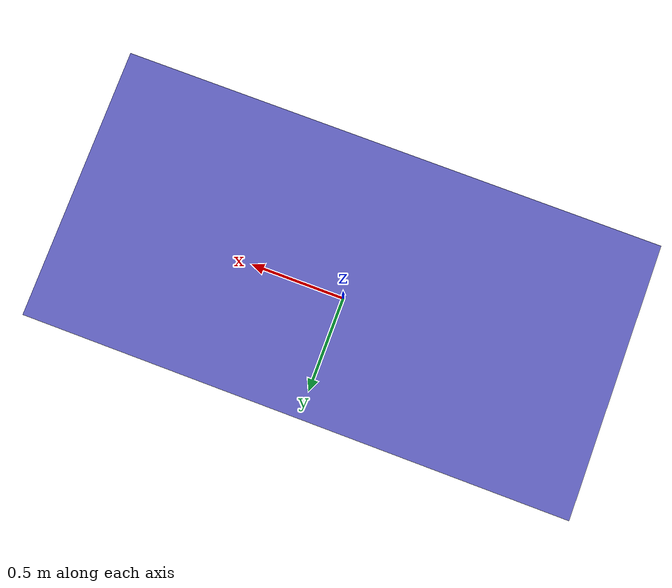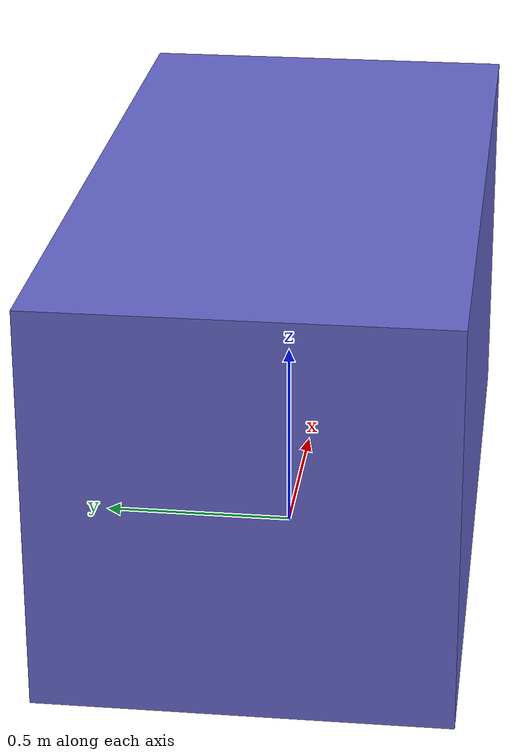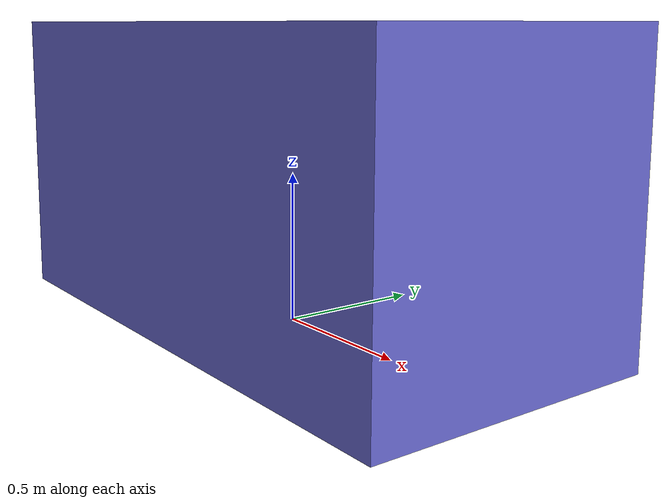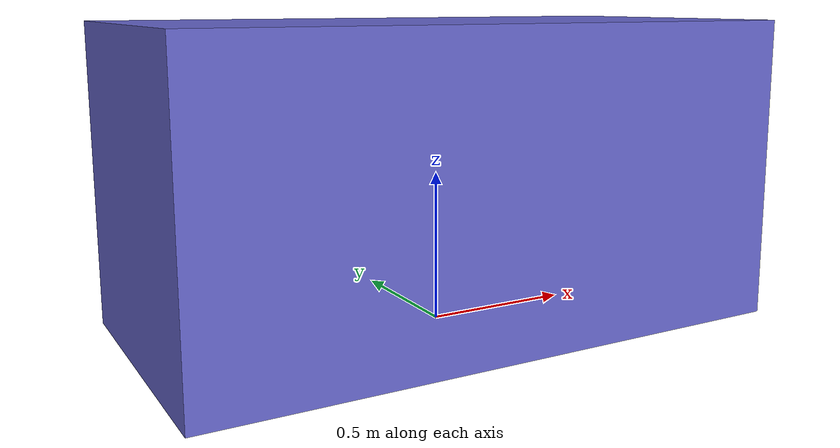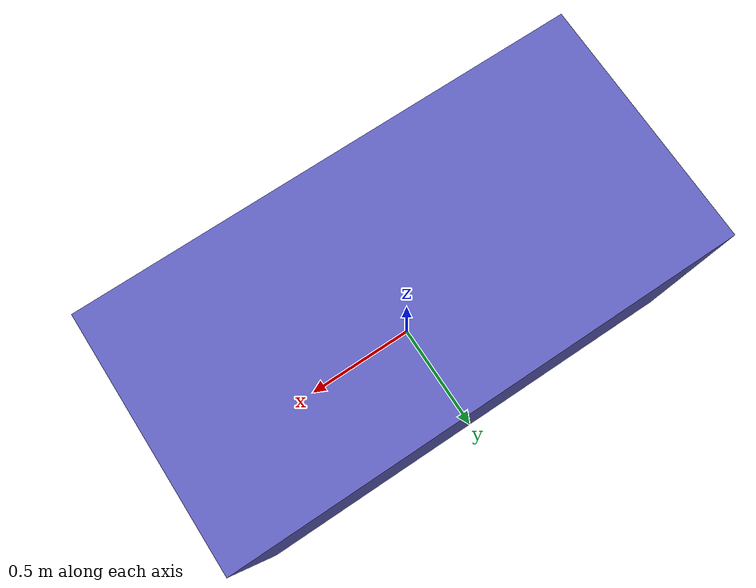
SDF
<sdf version='1.11'>
  <model name='floating_container'>
    <static>false</static>
    <link name='base_link'>
      <pose>0 0 0.5 0 0 0</pose>
      <inertial>
        <mass>200</mass>
        <inertia>
          <ixx>50</ixx>
          <iyy>50</iyy>
          <izz>50</izz>
          <ixy>0</ixy>
          <ixz>0</ixz>
          <iyz>0</iyz>
        </inertia>
      </inertial>

      <collision name='collision'>
        <geometry>
          <box>
            <size>2 1 1</size>
          </box>
        </geometry>
        <surface>
          <contact>
            <collide_without_contact>true</collide_without_contact>
          </contact>
        </surface>
      </collision>

      <visual name='visual'>
        <geometry>
          <box>
            <size>2 1 1</size>
          </box>
        </geometry>
        <material>
          <ambient>0.4 0.4 0.8 1</ambient>
          <diffuse>0.4 0.4 0.8 1</diffuse>
        </material>
      </visual>
    </link>

    <plugin name='vrx::Surface' filename='libSurface.so'>
      <link_name>base_link</link_name>
      <hull_length>2.0</hull_length>
      <hull_radius>0.3</hull_radius>
      <fluid_level>0</fluid_level>
      <points>
        <point>0.9 0.4 0</point>
        <point>-0.9 0.4 0</point>
        <point>0.9 -0.4 0</point>
        <point>-0.9 -0.4 0</point>
      </points>
      <wavefield>
        <topic>/vrx/wavefield/parameters</topic>
      </wavefield>
    </plugin>

    <plugin name='vrx::SimpleHydrodynamics' filename='libSimpleHydrodynamics.so'>
      <link_name>base_link</link_name>
      <xDotU>0.0</xDotU>
      <yDotV>0.0</yDotV>
      <nDotR>0.0</nDotR>
      <xU>100.0</xU>
      <xUU>200.0</xUU>
      <yV>100.0</yV>
      <yVV>100.0</yVV>
      <zW>500.0</zW>
      <kP>300.0</kP>
      <kPP>400.0</kPP>
      <mQ>300.0</mQ>
      <mQQ>400.0</mQQ>
      <nR>300.0</nR>
      <nRR>400.0</nRR>
    </plugin>
  </model>
</sdf>
